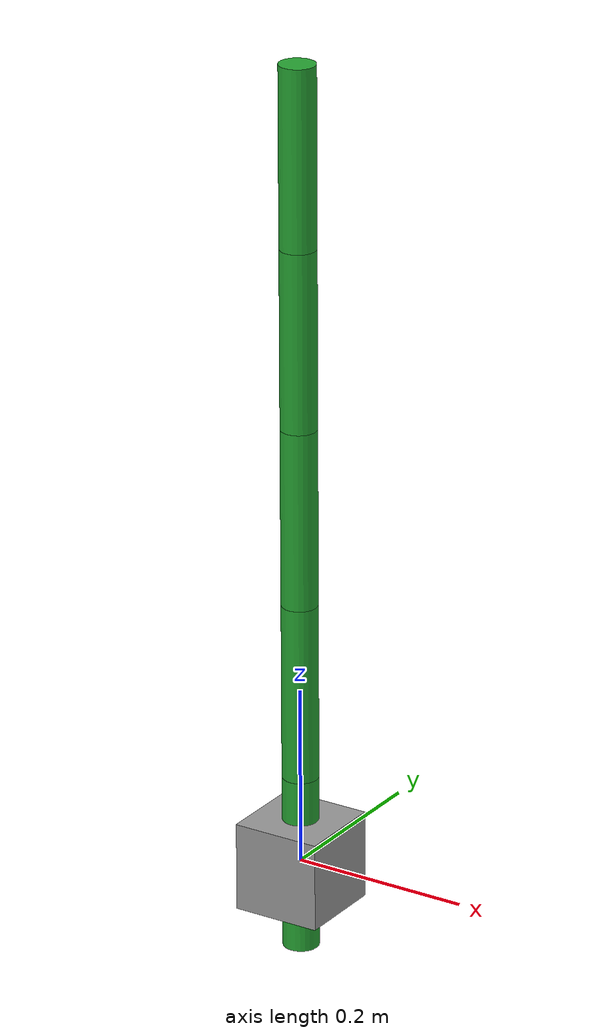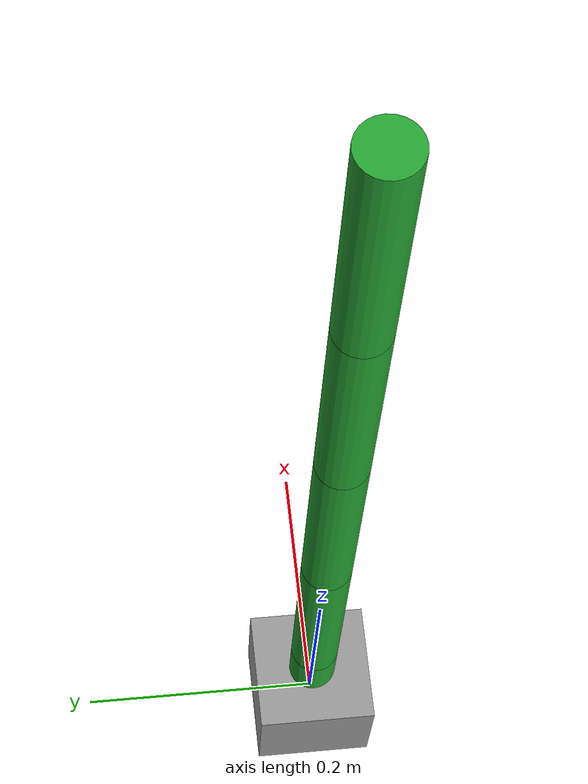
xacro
<?xml version="1.0"?>
<robot name="simple_rope" xmlns:xacro="http://www.ros.org/wiki/xacro">

  <!-- Base link (fixed to world) -->
  <link name="base_link">
    <inertial>
      <mass value="1.0"/>
      <origin xyz="0 0 0"/>
      <inertia ixx="0.1" iyy="0.1" izz="0.1" ixy="0.0" ixz="0.0" iyz="0.0"/>
    </inertial>
    <visual>
      <geometry>
        <box size="0.1 0.1 0.1"/>
      </geometry>
      <material name="Grey"/>
    </visual>
  </link>

  <!-- Rope links and joints -->
  <xacro:property name="link_length" value="0.2"/>
  <xacro:property name="num_links" value="5"/>

  <!-- Create the first link connected to the base -->
  <link name="rope_link_0">
    <inertial>
      <mass value="0.1"/>
      <origin xyz="0 0 ${link_length/2}"/>
      <inertia ixx="0.01" iyy="0.01" izz="0.01" ixy="0" ixz="0" iyz="0"/>
    </inertial>
    <visual>
      <geometry>
        <cylinder radius="0.02" length="${link_length}"/>
      </geometry>
      <material name="Green"/>
    </visual>
  </link>

  <joint name="joint_0" type="prismatic">
    <parent link="base_link"/>
    <child link="rope_link_0"/>
    <origin xyz="0 0 0"/>
    <axis xyz="0 0 1"/>
    <limit effort="50" lower="0" upper="0.5" velocity="1.0"/>
  </joint>

  <!-- Manually add subsequent links -->
  <link name="rope_link_1">
    <inertial>
      <mass value="0.1"/>
      <origin xyz="0 0 ${link_length/2}"/>
      <inertia ixx="0.01" iyy="0.01" izz="0.01" ixy="0" ixz="0" iyz="0"/>
    </inertial>
    <visual>
      <geometry>
        <cylinder radius="0.02" length="${link_length}"/>
      </geometry>
      <material name="Green"/>
    </visual>
  </link>

  <joint name="joint_1" type="prismatic">
    <parent link="rope_link_0"/>
    <child link="rope_link_1"/>
    <origin xyz="0 0 ${link_length}"/>
    <axis xyz="0 0 1"/>
    <limit effort="50" lower="0" upper="0.5" velocity="1.0"/>
  </joint>

  <link name="rope_link_2">
    <inertial>
      <mass value="0.1"/>
      <origin xyz="0 0 ${link_length/2}"/>
      <inertia ixx="0.01" iyy="0.01" izz="0.01" ixy="0" ixz="0" iyz="0"/>
    </inertial>
    <visual>
      <geometry>
        <cylinder radius="0.02" length="${link_length}"/>
      </geometry>
      <material name="Green"/>
    </visual>
  </link>

  <joint name="joint_2" type="prismatic">
    <parent link="rope_link_1"/>
    <child link="rope_link_2"/>
    <origin xyz="0 0 ${link_length}"/>
    <axis xyz="0 0 1"/>
    <limit effort="50" lower="0" upper="0.5" velocity="1.0"/>
  </joint>

  <link name="rope_link_3">
    <inertial>
      <mass value="0.1"/>
      <origin xyz="0 0 ${link_length/2}"/>
      <inertia ixx="0.01" iyy="0.01" izz="0.01" ixy="0" ixz="0" iyz="0"/>
    </inertial>
    <visual>
      <geometry>
        <cylinder radius="0.02" length="${link_length}"/>
      </geometry>
      <material name="Green"/>
    </visual>
  </link>

  <joint name="joint_3" type="prismatic">
    <parent link="rope_link_2"/>
    <child link="rope_link_3"/>
    <origin xyz="0 0 ${link_length}"/>
    <axis xyz="0 0 1"/>
    <limit effort="50" lower="0" upper="0.5" velocity="1.0"/>
  </joint>

  <link name="rope_link_4">
    <inertial>
      <mass value="0.1"/>
      <origin xyz="0 0 ${link_length/2}"/>
      <inertia ixx="0.01" iyy="0.01" izz="0.01" ixy="0" ixz="0" iyz="0"/>
    </inertial>
    <visual>
      <geometry>
        <cylinder radius="0.02" length="${link_length}"/>
      </geometry>
      <material name="Green"/>
    </visual>
  </link>

  <joint name="joint_4" type="prismatic">
    <parent link="rope_link_3"/>
    <child link="rope_link_4"/>
    <origin xyz="0 0 ${link_length}"/>
    <axis xyz="0 0 1"/>
    <limit effort="50" lower="0" upper="0.5" velocity="1.0"/>
  </joint>

</robot>
